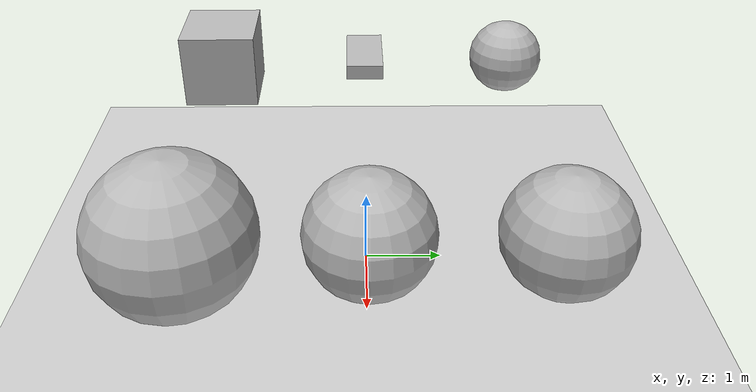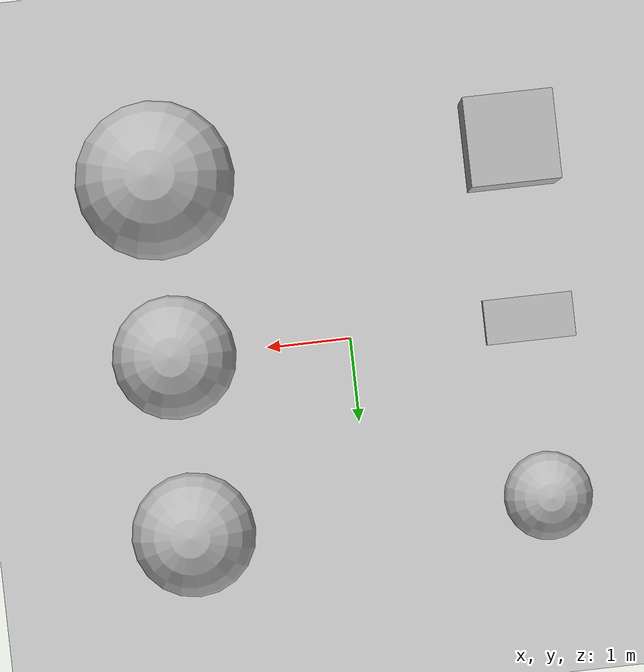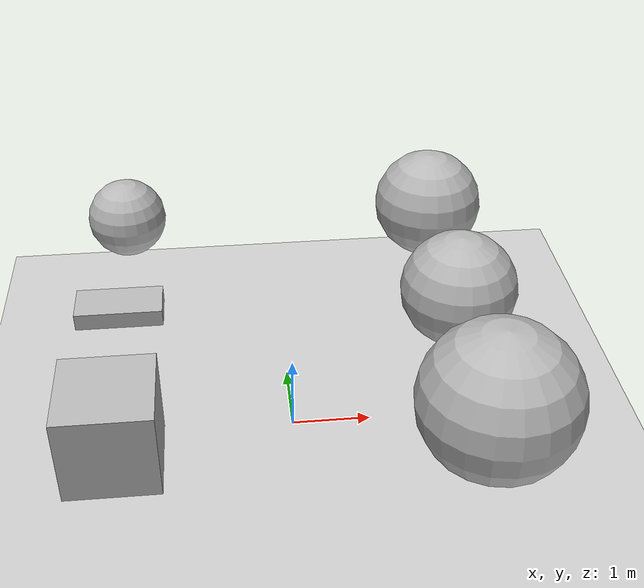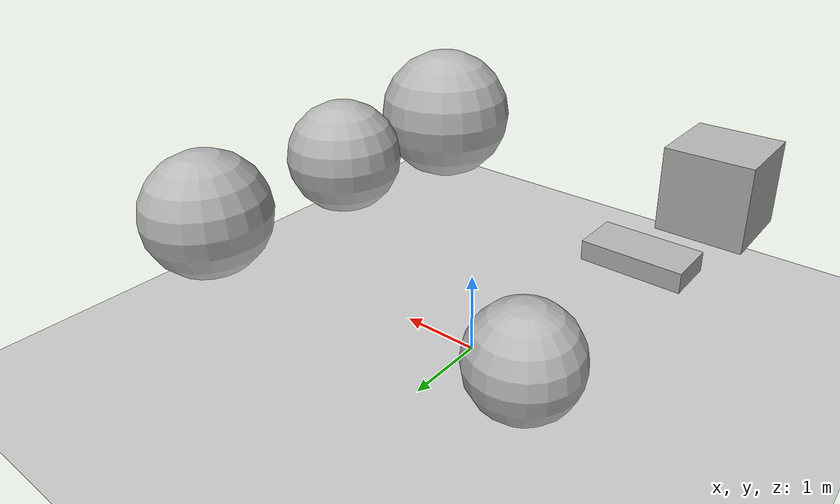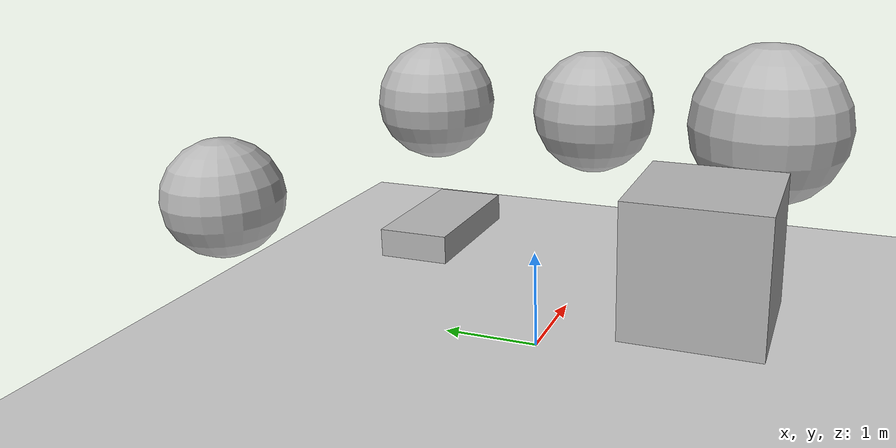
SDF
<sdf version="1.4">
 <world name="default">
  <include><uri>model://ground_plane</uri></include>
  <include><uri>model://sun</uri></include>
  <model name="box">
   <pose>-2 0 2 0 0 0</pose>
   <link name="box_link">
    <collision name="collision"><geometry><box><size>1 0.5 0.2</size></box></geometry></collision>
    <visual name="visual"><geometry><box><size>1 0.5 0.2</size></box></geometry></visual>
   </link>
   <plugin name="model_push" filename="libvisual_cue_plugin.so"/>
  </model>
  <model name="box_2">
   <pose>-2 -2 2 0 0 0</pose>
   <link name="box_link">
    <collision name="collision"><geometry><box><size>1 1 1</size></box></geometry></collision>
    <visual name="visual"><geometry><box><size>1 1 1</size></box></geometry></visual>
   </link>
   <plugin name="model_push" filename="libvisual_cue_plugin.so"/>
  </model>
  <model name="sphere_0">
   <pose>-2 2 2 0 0 0</pose>
   <link name="sphere_link">
    <collision name="collision"><geometry><sphere><radius>0.5</radius></sphere></geometry></collision>
    <visual name="visual"><geometry><sphere><radius>0.5</radius></sphere></geometry></visual>
   </link>
   <plugin name="model_push" filename="libvisual_cue_plugin.so"/>
  </model>
  <model name="box_green_0">
   <pose>2 0 2 0 0 0</pose>
   <link name="box_link">
    <collision name="collision"><geometry><box><size>1 0.5 0.2</size></box></geometry></collision>
    <visual name="visual"><geometry><box><size>1 0.5 0.2</size></box></geometry></visual>
    <visual name="visual_sphere_cue">
     <geometry><sphere><radius>0.7</radius></sphere></geometry>
     <plugin name="blink" filename="libBlinkVisualPlugin.so">
      <color_a>0 1 0 0.2</color_a>
      <color_b>0 1 0 0.05</color_b>
      <period>2</period>
      <use_wall_time>true</use_wall_time>
     </plugin>
     <material><script><uri>file://media/materials/scripts/gazebo.material</uri></script></material>
    </visual>
   </link>
  </model>
  <model name="box_green_1">
   <pose>2 -2 2 0 0 0</pose>
   <link name="box_link">
    <collision name="collision"><geometry><box><size>1 1 1</size></box></geometry></collision>
    <visual name="visual"><geometry><box><size>1 1 1</size></box></geometry></visual>
    <visual name="visual_sphere_cue">
     <geometry><sphere><radius>0.9</radius></sphere></geometry>
     <plugin name="blink" filename="libBlinkVisualPlugin.so">
      <color_a>0 1 0 0.2</color_a>
      <color_b>0 1 0 0.05</color_b>
      <period>2</period>
      <use_wall_time>true</use_wall_time>
     </plugin>
     <material><script><uri>file://media/materials/scripts/gazebo.material</uri></script></material>
    </visual>
   </link>
  </model>
  <model name="sphere_green_0">
   <pose>2 2 2 0 0 0</pose>
   <link name="sphere_link">
    <collision name="collision"><geometry><sphere><radius>0.5</radius></sphere></geometry></collision>
    <visual name="visual"><geometry><sphere><radius>0.5</radius></sphere></geometry></visual>
    <visual name="visual_sphere_cue">
     <geometry><sphere><radius>0.7</radius></sphere></geometry>
     <plugin name="blink" filename="libBlinkVisualPlugin.so">
      <color_a>0 1 0 0.2</color_a>
      <color_b>0 1 0 0.05</color_b>
      <period>2</period>
      <use_wall_time>true</use_wall_time>
     </plugin>
     <material><script><uri>file://media/materials/scripts/gazebo.material</uri></script></material>
    </visual>
   </link>
  </model>
 </world>
</sdf>
